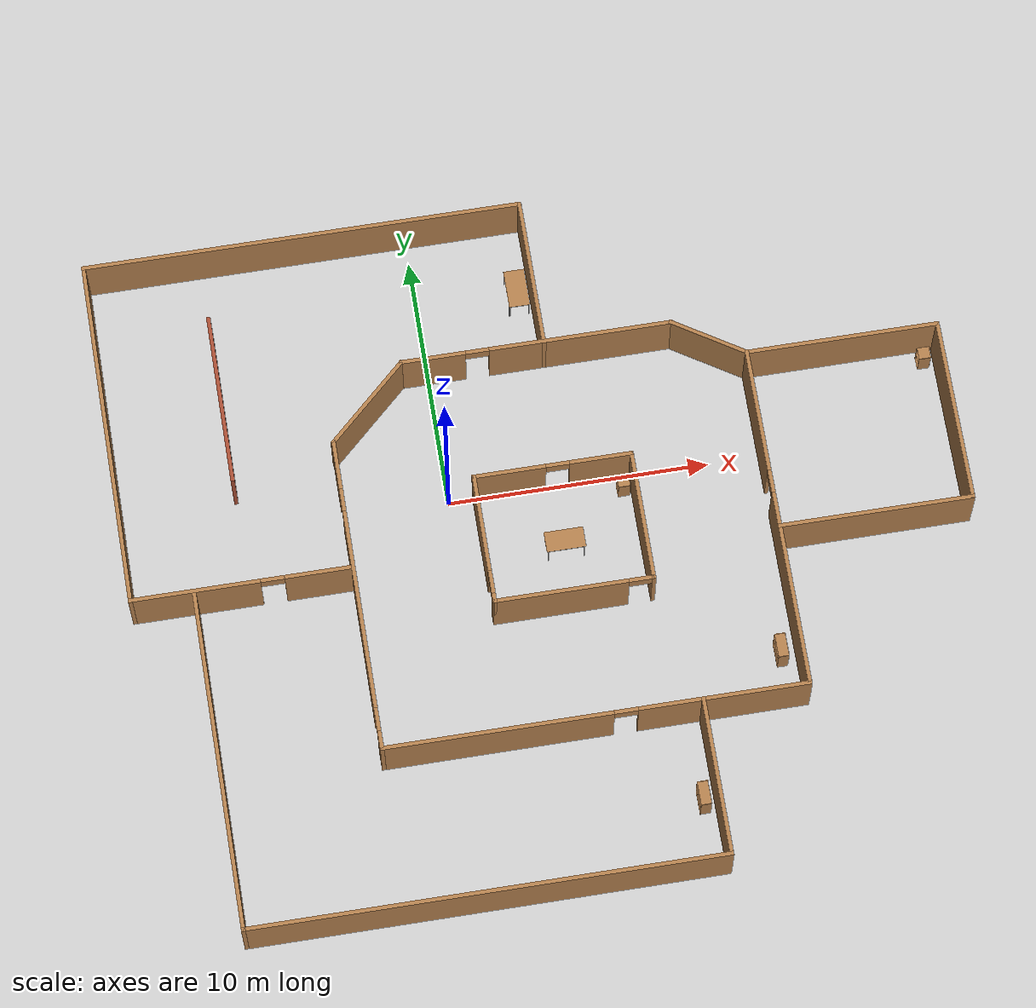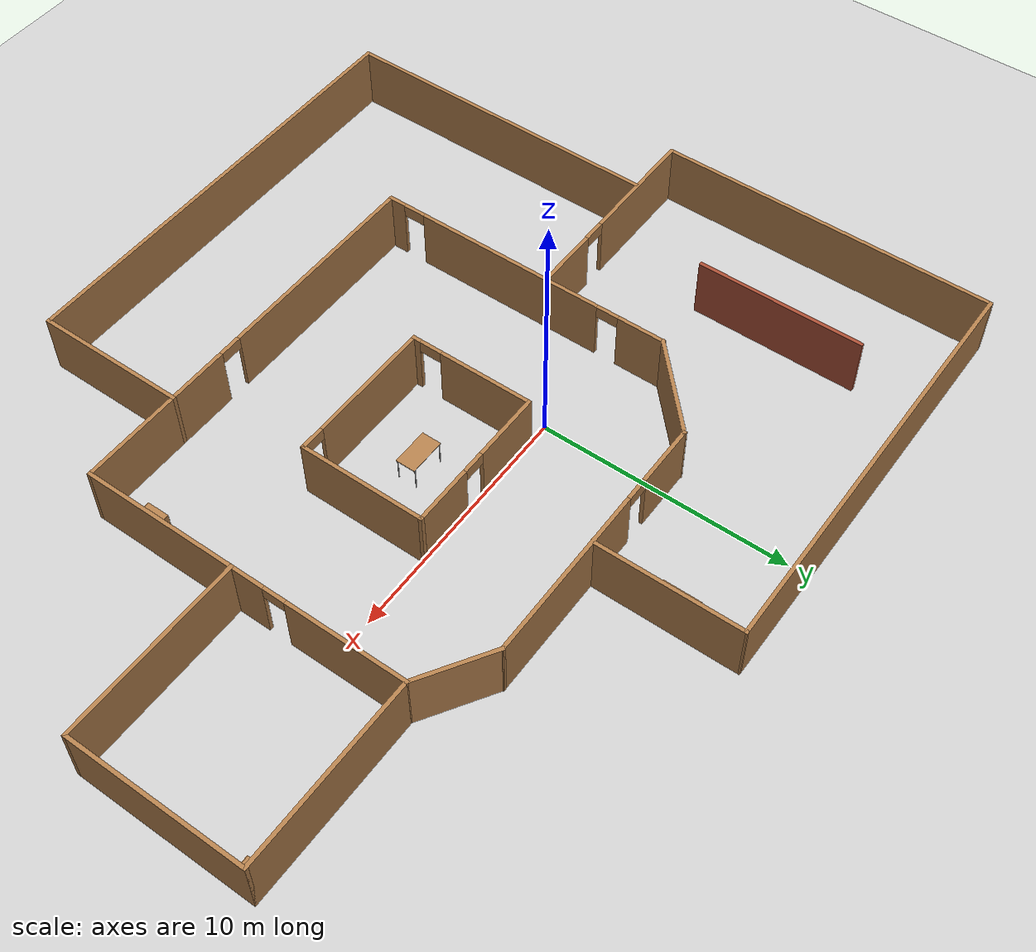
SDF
<sdf version="1.7">
 <world name="default">
  <model name="ground_plane">
   <static>1</static>
   <link name="link">
    <collision name="collision">
     <geometry><plane><normal>0 0 1</normal><size>100 100</size></plane></geometry>
     <surface>
      <contact><collide_bitmask>65535</collide_bitmask></contact>
      <friction><ode><mu>100</mu><mu2>50</mu2></ode></friction>
     </surface>
    </collision>
    <visual name="visual">
     <cast_shadows>0</cast_shadows>
     <geometry><plane><normal>0 0 1</normal><size>100 100</size></plane></geometry>
     <material>
      <script><uri>file://media/materials/scripts/gazebo.material</uri><name>Gazebo/Grey</name></script>
     </material>
    </visual>
   </link>
  </model>
  <model name="rs1_floor_plan_2">
   <pose>3.48266 -2.61019 0 0 -0 0</pose>
   <link name="Wall_1">
    <pose>8.51734 -0.714811 0 0 -0 -1.5708</pose>
    <visual name="Wall_1_Visual_0">
     <pose>-4.28666 0 1.25 0 -0 0</pose>
     <geometry><box><size>4.92668 0.15 2.5</size></box></geometry>
     <material>
      <script><uri>file://media/materials/scripts/gazebo.material</uri><name>Gazebo/Wood</name></script>
      <ambient>1 1 1 1</ambient>
     </material>
     <meta><layer>0</layer></meta>
    </visual>
    <collision name="Wall_1_Collision_0">
     <geometry><box><size>4.92668 0.15 2.5</size></box></geometry>
     <pose>-4.28666 0 1.25 0 -0 0</pose>
    </collision>
    <visual name="Wall_1_Visual_1">
     <pose>2.91334 0 1.25 0 -0 0</pose>
     <geometry><box><size>7.67333 0.15 2.5</size></box></geometry>
     <material>
      <script><uri>file://media/materials/scripts/gazebo.material</uri><name>Gazebo/Wood</name></script>
      <ambient>1 1 1 1</ambient>
     </material>
     <meta><layer>0</layer></meta>
    </visual>
    <collision name="Wall_1_Collision_1">
     <geometry><box><size>7.67333 0.15 2.5</size></box></geometry>
     <pose>2.91334 0 1.25 0 -0 0</pose>
    </collision>
    <visual name="Wall_1_Visual_2">
     <pose>-1.37332 0 2.25 0 -0 0</pose>
     <geometry><box><size>0.9 0.15 0.5</size></box></geometry>
     <material>
      <script><uri>file://media/materials/scripts/gazebo.material</uri><name>Gazebo/Wood</name></script>
      <ambient>1 1 1 1</ambient>
     </material>
     <meta><layer>0</layer></meta>
    </visual>
    <collision name="Wall_1_Collision_2">
     <geometry><box><size>0.9 0.15 0.5</size></box></geometry>
     <pose>-1.37332 0 2.25 0 -0 0</pose>
    </collision>
   </link>
   <link name="Wall_11">
    <pose>-11.6939 -0.210359 0 0 -0 3.14159</pose>
    <visual name="Wall_11_Visual_0">
     <pose>-2.93535 0 1.25 0 -0 0</pose>
     <geometry><box><size>2.6293 0.15 2.5</size></box></geometry>
     <material>
      <script><uri>file://media/materials/scripts/gazebo.material</uri><name>Gazebo/Wood</name></script>
      <ambient>1 1 1 1</ambient>
     </material>
     <meta><layer>0</layer></meta>
    </visual>
    <collision name="Wall_11_Collision_0">
     <geometry><box><size>2.6293 0.15 2.5</size></box></geometry>
     <pose>-2.93535 0 1.25 0 -0 0</pose>
    </collision>
    <visual name="Wall_11_Visual_1">
     <pose>1.76465 0 1.25 0 -0 0</pose>
     <geometry><box><size>4.9707 0.15 2.5</size></box></geometry>
     <material>
      <script><uri>file://media/materials/scripts/gazebo.material</uri><name>Gazebo/Wood</name></script>
      <ambient>1 1 1 1</ambient>
     </material>
     <meta><layer>0</layer></meta>
    </visual>
    <collision name="Wall_11_Collision_1">
     <geometry><box><size>4.9707 0.15 2.5</size></box></geometry>
     <pose>1.76465 0 1.25 0 -0 0</pose>
    </collision>
    <visual name="Wall_11_Visual_2">
     <pose>-1.1707 0 2.25 0 -0 0</pose>
     <geometry><box><size>0.9 0.15 0.5</size></box></geometry>
     <material>
      <script><uri>file://media/materials/scripts/gazebo.material</uri><name>Gazebo/Wood</name></script>
      <ambient>1 1 1 1</ambient>
     </material>
     <meta><layer>0</layer></meta>
    </visual>
    <collision name="Wall_11_Collision_2">
     <geometry><box><size>0.9 0.15 0.5</size></box></geometry>
     <pose>-1.1707 0 2.25 0 -0 0</pose>
    </collision>
   </link>
   <link name="Wall_12">
    <collision name="Wall_12_Collision">
     <geometry><box><size>13.75 0.15 2.5</size></box></geometry>
     <pose>0 0 1.25 0 -0 0</pose>
    </collision>
    <visual name="Wall_12_Visual">
     <pose>0 0 1.25 0 -0 0</pose>
     <geometry><box><size>13.75 0.15 2.5</size></box></geometry>
     <material>
      <script><uri>file://media/materials/scripts/gazebo.material</uri><name>Gazebo/Wood</name></script>
      <ambient>1 1 1 1</ambient>
     </material>
     <meta><layer>0</layer></meta>
    </visual>
    <pose>-15.8689 6.58964 0 0 -0 1.5708</pose>
   </link>
   <link name="Wall_13">
    <collision name="Wall_13_Collision">
     <geometry><box><size>17 0.15 2.5</size></box></geometry>
     <pose>0 0 1.25 0 -0 0</pose>
    </collision>
    <visual name="Wall_13_Visual">
     <pose>0 0 1.25 0 -0 0</pose>
     <geometry><box><size>17 0.15 2.5</size></box></geometry>
     <material>
      <script><uri>file://media/materials/scripts/gazebo.material</uri><name>Gazebo/Wood</name></script>
      <ambient>1 1 1 1</ambient>
     </material>
     <meta><layer>0</layer></meta>
    </visual>
    <pose>-7.44387 13.3896 0 0 -0 0</pose>
   </link>
   <link name="Wall_14">
    <collision name="Wall_14_Collision">
     <geometry><box><size>5.91225 0.15 2.5</size></box></geometry>
     <pose>0 0 1.25 0 -0 0</pose>
    </collision>
    <visual name="Wall_14_Visual">
     <pose>0 0 1.25 0 -0 0</pose>
     <geometry><box><size>5.91225 0.15 2.5</size></box></geometry>
     <material>
      <script><uri>file://media/materials/scripts/gazebo.material</uri><name>Gazebo/Wood</name></script>
      <ambient>1 1 1 1</ambient>
     </material>
     <meta><layer>0</layer></meta>
    </visual>
    <pose>0.987578 10.5085 0 0 -0 -1.56856</pose>
   </link>
   <link name="Wall_16">
    <collision name="Wall_16_Collision">
     <geometry><box><size>7.5 0.15 2.5</size></box></geometry>
     <pose>0 0 1.25 0 -0 0</pose>
    </collision>
    <visual name="Wall_16_Visual">
     <pose>0 0 1.25 0 -0 0</pose>
     <geometry><box><size>7.5 0.15 2.5</size></box></geometry>
     <material>
      <script><uri>file://media/materials/scripts/gazebo.material</uri><name>Gazebo/Wood</name></script>
      <ambient>1 1 1 1</ambient>
     </material>
     <meta><layer>0</layer></meta>
    </visual>
    <pose>12.1939 5.958 0 0 -0 0</pose>
   </link>
   <link name="Wall_17">
    <collision name="Wall_17_Collision">
     <geometry><box><size>7.25 0.15 2.5</size></box></geometry>
     <pose>0 0 1.25 0 -0 0</pose>
    </collision>
    <visual name="Wall_17_Visual">
     <pose>0 0 1.25 0 -0 0</pose>
     <geometry><box><size>7.25 0.15 2.5</size></box></geometry>
     <material>
      <script><uri>file://media/materials/scripts/gazebo.material</uri><name>Gazebo/Wood</name></script>
      <ambient>1 1 1 1</ambient>
     </material>
     <meta><layer>0</layer></meta>
    </visual>
    <pose>15.8689 2.408 0 0 -0 -1.5708</pose>
   </link>
   <link name="Wall_18">
    <collision name="Wall_18_Collision">
     <geometry><box><size>7.5 0.15 2.5</size></box></geometry>
     <pose>0 0 1.25 0 -0 0</pose>
    </collision>
    <visual name="Wall_18_Visual">
     <pose>0 0 1.25 0 -0 0</pose>
     <geometry><box><size>7.5 0.15 2.5</size></box></geometry>
     <material>
      <script><uri>file://media/materials/scripts/gazebo.material</uri><name>Gazebo/Wood</name></script>
      <ambient>1 1 1 1</ambient>
     </material>
     <meta><layer>0</layer></meta>
    </visual>
    <pose>12.1939 -1.142 0 0 -0 3.14159</pose>
   </link>
   <link name="Wall_2">
    <pose>0.517338 -7.38981 0 0 -0 3.14159</pose>
    <visual name="Wall_2_Visual_0">
     <pose>-4.8168 0 1.25 0 -0 0</pose>
     <geometry><box><size>6.5164 0.15 2.5</size></box></geometry>
     <material>
      <script><uri>file://media/materials/scripts/gazebo.material</uri><name>Gazebo/Wood</name></script>
      <ambient>1 1 1 1</ambient>
     </material>
     <meta><layer>0</layer></meta>
    </visual>
    <collision name="Wall_2_Collision_0">
     <geometry><box><size>6.5164 0.15 2.5</size></box></geometry>
     <pose>-4.8168 0 1.25 0 -0 0</pose>
    </collision>
    <visual name="Wall_2_Visual_1">
     <pose>3.7082 0 1.25 0 -0 0</pose>
     <geometry><box><size>8.7336 0.15 2.5</size></box></geometry>
     <material>
      <script><uri>file://media/materials/scripts/gazebo.material</uri><name>Gazebo/Wood</name></script>
      <ambient>1 1 1 1</ambient>
     </material>
     <meta><layer>0</layer></meta>
    </visual>
    <collision name="Wall_2_Collision_1">
     <geometry><box><size>8.7336 0.15 2.5</size></box></geometry>
     <pose>3.7082 0 1.25 0 -0 0</pose>
    </collision>
    <visual name="Wall_2_Visual_2">
     <pose>-1.1086 0 2.25 0 -0 0</pose>
     <geometry><box><size>0.9 0.15 0.5</size></box></geometry>
     <material>
      <script><uri>file://media/materials/scripts/gazebo.material</uri><name>Gazebo/Wood</name></script>
      <ambient>1 1 1 1</ambient>
     </material>
     <meta><layer>0</layer></meta>
    </visual>
    <collision name="Wall_2_Collision_2">
     <geometry><box><size>0.9 0.15 0.5</size></box></geometry>
     <pose>-1.1086 0 2.25 0 -0 0</pose>
    </collision>
   </link>
   <link name="Wall_20">
    <collision name="Wall_20_Collision">
     <geometry><box><size>4.25366 0.15 2.5</size></box></geometry>
     <pose>0 0 1.25 0 -0 0</pose>
    </collision>
    <visual name="Wall_20_Visual">
     <pose>0 0 1.25 0 -0 0</pose>
     <geometry><box><size>4.25366 0.15 2.5</size></box></geometry>
     <material>
      <script><uri>file://media/materials/scripts/gazebo.material</uri><name>Gazebo/Wood</name></script>
      <ambient>1 1 1 1</ambient>
     </material>
     <meta><layer>0</layer></meta>
    </visual>
    <pose>-5.98266 6.23019 0 0 -0 0.750929</pose>
   </link>
   <link name="Wall_21">
    <pose>0.702338 7.63019 0 0 -0 0</pose>
    <visual name="Wall_21_Visual_0">
     <pose>-3.9907 0 1.25 0 -0 0</pose>
     <geometry><box><size>2.5386 0.15 2.5</size></box></geometry>
     <material>
      <script><uri>file://media/materials/scripts/gazebo.material</uri><name>Gazebo/Wood</name></script>
      <ambient>1 1 1 1</ambient>
     </material>
     <meta><layer>0</layer></meta>
    </visual>
    <collision name="Wall_21_Collision_0">
     <geometry><box><size>2.5386 0.15 2.5</size></box></geometry>
     <pose>-3.9907 0 1.25 0 -0 0</pose>
    </collision>
    <visual name="Wall_21_Visual_1">
     <pose>1.7193 0 1.25 0 -0 0</pose>
     <geometry><box><size>7.0814 0.15 2.5</size></box></geometry>
     <material>
      <script><uri>file://media/materials/scripts/gazebo.material</uri><name>Gazebo/Wood</name></script>
      <ambient>1 1 1 1</ambient>
     </material>
     <meta><layer>0</layer></meta>
    </visual>
    <collision name="Wall_21_Collision_1">
     <geometry><box><size>7.0814 0.15 2.5</size></box></geometry>
     <pose>1.7193 0 1.25 0 -0 0</pose>
    </collision>
    <visual name="Wall_21_Visual_2">
     <pose>-2.2714 0 2.25 0 -0 0</pose>
     <geometry><box><size>0.9 0.15 0.5</size></box></geometry>
     <material>
      <script><uri>file://media/materials/scripts/gazebo.material</uri><name>Gazebo/Wood</name></script>
      <ambient>1 1 1 1</ambient>
     </material>
     <meta><layer>0</layer></meta>
    </visual>
    <collision name="Wall_21_Collision_2">
     <geometry><box><size>0.9 0.15 0.5</size></box></geometry>
     <pose>-2.2714 0 2.25 0 -0 0</pose>
    </collision>
   </link>
   <link name="Wall_22">
    <collision name="Wall_22_Collision">
     <geometry><box><size>3.26774 0.15 2.5</size></box></geometry>
     <pose>0 0 1.25 0 -0 0</pose>
    </collision>
    <visual name="Wall_22_Visual">
     <pose>0 0 1.25 0 -0 0</pose>
     <geometry><box><size>3.26774 0.15 2.5</size></box></geometry>
     <material>
      <script><uri>file://media/materials/scripts/gazebo.material</uri><name>Gazebo/Wood</name></script>
      <ambient>1 1 1 1</ambient>
     </material>
     <meta><layer>0</layer></meta>
    </visual>
    <pose>7.2031 6.79409 0 0 -0 -0.566075</pose>
   </link>
   <link name="Wall_24">
    <collision name="Wall_24_Collision">
     <geometry><box><size>6.75 0.15 2.5</size></box></geometry>
     <pose>0 0 1.25 0 -0 0</pose>
    </collision>
    <visual name="Wall_24_Visual">
     <pose>0 0 1.25 0 -0 0</pose>
     <geometry><box><size>6.75 0.15 2.5</size></box></geometry>
     <material>
      <script><uri>file://media/materials/scripts/gazebo.material</uri><name>Gazebo/Bricks</name></script>
      <ambient>1 1 1 1</ambient>
     </material>
     <meta><layer>0</layer></meta>
    </visual>
    <pose>-11.443 7.26025 0 0 -0 -1.5708</pose>
   </link>
   <link name="Wall_26">
    <collision name="Wall_26_Collision">
     <geometry><box><size>13.25 0.15 2.5</size></box></geometry>
     <pose>0 0 1.25 0 -0 0</pose>
    </collision>
    <visual name="Wall_26_Visual">
     <pose>0 0 1.25 0 -0 0</pose>
     <geometry><box><size>13.25 0.15 2.5</size></box></geometry>
     <material>
      <script><uri>file://media/materials/scripts/gazebo.material</uri><name>Gazebo/Wood</name></script>
      <ambient>1 1 1 1</ambient>
     </material>
     <meta><layer>0</layer></meta>
    </visual>
    <pose>-13.4827 -6.83981 0 0 -0 -1.5708</pose>
   </link>
   <link name="Wall_27">
    <collision name="Wall_27_Collision">
     <geometry><box><size>18.15 0.15 2.5</size></box></geometry>
     <pose>0 0 1.25 0 -0 0</pose>
    </collision>
    <visual name="Wall_27_Visual">
     <pose>0 0 1.25 0 -0 0</pose>
     <geometry><box><size>18.15 0.15 2.5</size></box></geometry>
     <material>
      <script><uri>file://media/materials/scripts/gazebo.material</uri><name>Gazebo/Wood</name></script>
      <ambient>1 1 1 1</ambient>
     </material>
     <meta><layer>0</layer></meta>
    </visual>
    <pose>-4.48266 -13.3898 0 0 -0 0</pose>
   </link>
   <link name="Wall_28">
    <collision name="Wall_28_Collision">
     <geometry><box><size>6.15 0.15 2.5</size></box></geometry>
     <pose>0 0 1.25 0 -0 0</pose>
    </collision>
    <visual name="Wall_28_Visual">
     <pose>0 0 1.25 0 -0 0</pose>
     <geometry><box><size>6.15 0.15 2.5</size></box></geometry>
     <material>
      <script><uri>file://media/materials/scripts/gazebo.material</uri><name>Gazebo/Wood</name></script>
      <ambient>1 1 1 1</ambient>
     </material>
     <meta><layer>0</layer></meta>
    </visual>
    <pose>4.51734 -10.3898 0 0 -0 1.5708</pose>
   </link>
   <link name="Wall_3">
    <pose>-7.48266 -1.27981 0 0 -0 1.5708</pose>
    <visual name="Wall_3_Visual_0">
     <pose>-5.80672 0 1.25 0 -0 0</pose>
     <geometry><box><size>0.756566 0.15 2.5</size></box></geometry>
     <material>
      <script><uri>file://media/materials/scripts/gazebo.material</uri><name>Gazebo/Wood</name></script>
      <ambient>1 1 1 1</ambient>
     </material>
     <meta><layer>0</layer></meta>
    </visual>
    <collision name="Wall_3_Collision_0">
     <geometry><box><size>0.756566 0.15 2.5</size></box></geometry>
     <pose>-5.80672 0 1.25 0 -0 0</pose>
    </collision>
    <visual name="Wall_3_Visual_1">
     <pose>-0.606396 0 1.25 0 -0 0</pose>
     <geometry><box><size>7.84408 0.15 2.5</size></box></geometry>
     <material>
      <script><uri>file://media/materials/scripts/gazebo.material</uri><name>Gazebo/Wood</name></script>
      <ambient>1 1 1 1</ambient>
     </material>
     <meta><layer>0</layer></meta>
    </visual>
    <collision name="Wall_3_Collision_1">
     <geometry><box><size>7.84408 0.15 2.5</size></box></geometry>
     <pose>-0.606396 0 1.25 0 -0 0</pose>
    </collision>
    <visual name="Wall_3_Visual_2">
     <pose>5.20032 0 1.25 0 -0 0</pose>
     <geometry><box><size>1.96936 0.15 2.5</size></box></geometry>
     <material>
      <script><uri>file://media/materials/scripts/gazebo.material</uri><name>Gazebo/Wood</name></script>
      <ambient>1 1 1 1</ambient>
     </material>
     <meta><layer>0</layer></meta>
    </visual>
    <collision name="Wall_3_Collision_2">
     <geometry><box><size>1.96936 0.15 2.5</size></box></geometry>
     <pose>5.20032 0 1.25 0 -0 0</pose>
    </collision>
    <visual name="Wall_3_Visual_3">
     <pose>-4.97843 0 2.25 0 -0 0</pose>
     <geometry><box><size>0.9 0.15 0.5</size></box></geometry>
     <material>
      <script><uri>file://media/materials/scripts/gazebo.material</uri><name>Gazebo/Wood</name></script>
      <ambient>1 1 1 1</ambient>
     </material>
     <meta><layer>0</layer></meta>
    </visual>
    <collision name="Wall_3_Collision_3">
     <geometry><box><size>0.9 0.15 0.5</size></box></geometry>
     <pose>-4.97843 0 2.25 0 -0 0</pose>
    </collision>
    <visual name="Wall_3_Visual_4">
     <pose>3.76564 0 2.25 0 -0 0</pose>
     <geometry><box><size>0.9 0.15 0.5</size></box></geometry>
     <material>
      <script><uri>file://media/materials/scripts/gazebo.material</uri><name>Gazebo/Wood</name></script>
      <ambient>1 1 1 1</ambient>
     </material>
     <meta><layer>0</layer></meta>
    </visual>
    <collision name="Wall_3_Collision_4">
     <geometry><box><size>0.9 0.15 0.5</size></box></geometry>
     <pose>3.76564 0 2.25 0 -0 0</pose>
    </collision>
   </link>
   <link name="Wall_5">
    <pose>-2.48266 0.110189 0 0 -0 -1.5708</pose>
    <visual name="Wall_5_Visual_0">
     <pose>-0.647016 0 1.25 0 -0 0</pose>
     <geometry><box><size>3.85597 0.15 2.5</size></box></geometry>
     <material>
      <script><uri>file://media/materials/scripts/gazebo.material</uri><name>Gazebo/Wood</name></script>
      <ambient>1 1 1 1</ambient>
     </material>
     <meta><layer>0</layer></meta>
    </visual>
    <collision name="Wall_5_Collision_0">
     <geometry><box><size>3.85597 0.15 2.5</size></box></geometry>
     <pose>-0.647016 0 1.25 0 -0 0</pose>
    </collision>
    <visual name="Wall_5_Visual_1">
     <pose>2.37798 0 1.25 0 -0 0</pose>
     <geometry><box><size>0.394033 0.15 2.5</size></box></geometry>
     <material>
      <script><uri>file://media/materials/scripts/gazebo.material</uri><name>Gazebo/Wood</name></script>
      <ambient>1 1 1 1</ambient>
     </material>
     <meta><layer>0</layer></meta>
    </visual>
    <collision name="Wall_5_Collision_1">
     <geometry><box><size>0.394033 0.15 2.5</size></box></geometry>
     <pose>2.37798 0 1.25 0 -0 0</pose>
    </collision>
    <visual name="Wall_5_Visual_2">
     <pose>1.73097 0 2.25 0 -0 0</pose>
     <geometry><box><size>0.9 0.15 0.5</size></box></geometry>
     <material>
      <script><uri>file://media/materials/scripts/gazebo.material</uri><name>Gazebo/Wood</name></script>
      <ambient>1 1 1 1</ambient>
     </material>
     <meta><layer>0</layer></meta>
    </visual>
    <collision name="Wall_5_Collision_2">
     <geometry><box><size>0.9 0.15 0.5</size></box></geometry>
     <pose>1.73097 0 2.25 0 -0 0</pose>
    </collision>
   </link>
   <link name="Wall_6">
    <pose>0.517338 -2.38981 0 0 -0 0</pose>
    <visual name="Wall_6_Visual_0">
     <pose>-0.506158 0 1.25 0 -0 0</pose>
     <geometry><box><size>5.13769 0.15 2.5</size></box></geometry>
     <material>
      <script><uri>file://media/materials/scripts/gazebo.material</uri><name>Gazebo/Wood</name></script>
      <ambient>1 1 1 1</ambient>
     </material>
     <meta><layer>0</layer></meta>
    </visual>
    <collision name="Wall_6_Collision_0">
     <geometry><box><size>5.13769 0.15 2.5</size></box></geometry>
     <pose>-0.506158 0 1.25 0 -0 0</pose>
    </collision>
    <visual name="Wall_6_Visual_1">
     <pose>3.01884 0 1.25 0 -0 0</pose>
     <geometry><box><size>0.112315 0.15 2.5</size></box></geometry>
     <material>
      <script><uri>file://media/materials/scripts/gazebo.material</uri><name>Gazebo/Wood</name></script>
      <ambient>1 1 1 1</ambient>
     </material>
     <meta><layer>0</layer></meta>
    </visual>
    <collision name="Wall_6_Collision_1">
     <geometry><box><size>0.112315 0.15 2.5</size></box></geometry>
     <pose>3.01884 0 1.25 0 -0 0</pose>
    </collision>
    <visual name="Wall_6_Visual_2">
     <pose>2.51268 0 2.25 0 -0 0</pose>
     <geometry><box><size>0.9 0.15 0.5</size></box></geometry>
     <material>
      <script><uri>file://media/materials/scripts/gazebo.material</uri><name>Gazebo/Wood</name></script>
      <ambient>1 1 1 1</ambient>
     </material>
     <meta><layer>0</layer></meta>
    </visual>
    <collision name="Wall_6_Collision_2">
     <geometry><box><size>0.9 0.15 0.5</size></box></geometry>
     <pose>2.51268 0 2.25 0 -0 0</pose>
    </collision>
   </link>
   <link name="Wall_7">
    <collision name="Wall_7_Collision">
     <geometry><box><size>5.15 0.15 2.5</size></box></geometry>
     <pose>0 0 1.25 0 -0 0</pose>
    </collision>
    <visual name="Wall_7_Visual">
     <pose>0 0 1.25 0 -0 0</pose>
     <geometry><box><size>5.15 0.15 2.5</size></box></geometry>
     <material>
      <script><uri>file://media/materials/scripts/gazebo.material</uri><name>Gazebo/Wood</name></script>
      <ambient>1 1 1 1</ambient>
     </material>
     <meta><layer>0</layer></meta>
    </visual>
    <pose>3.51734 0.110189 0 0 -0 1.5708</pose>
   </link>
   <link name="Wall_8">
    <pose>0.517338 2.61019 0 0 -0 3.14159</pose>
    <visual name="Wall_8_Visual_0">
     <pose>-1.85331 0 1.25 0 -0 0</pose>
     <geometry><box><size>2.44338 0.15 2.5</size></box></geometry>
     <material>
      <script><uri>file://media/materials/scripts/gazebo.material</uri><name>Gazebo/Wood</name></script>
      <ambient>1 1 1 1</ambient>
     </material>
     <meta><layer>0</layer></meta>
    </visual>
    <collision name="Wall_8_Collision_0">
     <geometry><box><size>2.44338 0.15 2.5</size></box></geometry>
     <pose>-1.85331 0 1.25 0 -0 0</pose>
    </collision>
    <visual name="Wall_8_Visual_1">
     <pose>1.67169 0 1.25 0 -0 0</pose>
     <geometry><box><size>2.80662 0.15 2.5</size></box></geometry>
     <material>
      <script><uri>file://media/materials/scripts/gazebo.material</uri><name>Gazebo/Wood</name></script>
      <ambient>1 1 1 1</ambient>
     </material>
     <meta><layer>0</layer></meta>
    </visual>
    <collision name="Wall_8_Collision_1">
     <geometry><box><size>2.80662 0.15 2.5</size></box></geometry>
     <pose>1.67169 0 1.25 0 -0 0</pose>
    </collision>
    <visual name="Wall_8_Visual_2">
     <pose>-0.181616 0 2.25 0 -0 0</pose>
     <geometry><box><size>0.9 0.15 0.5</size></box></geometry>
     <material>
      <script><uri>file://media/materials/scripts/gazebo.material</uri><name>Gazebo/Wood</name></script>
      <ambient>1 1 1 1</ambient>
     </material>
     <meta><layer>0</layer></meta>
    </visual>
    <collision name="Wall_8_Collision_2">
     <geometry><box><size>0.9 0.15 0.5</size></box></geometry>
     <pose>-0.181616 0 2.25 0 -0 0</pose>
    </collision>
   </link>
   <static>1</static>
  </model>
  <model name="table">
   <static>1</static>
   <link name="link">
    <collision name="surface">
     <pose>0 0 1 0 -0 0</pose>
     <geometry><box><size>1.5 0.8 0.03</size></box></geometry>
     <surface><friction><ode><mu>0.6</mu><mu2>0.6</mu2></ode></friction></surface>
    </collision>
    <visual name="visual1">
     <pose>0 0 1 0 -0 0</pose>
     <geometry><box><size>1.5 0.8 0.03</size></box></geometry>
     <material>
      <script><uri>file://media/materials/scripts/gazebo.material</uri><name>Gazebo/Wood</name></script>
     </material>
    </visual>
    <collision name="front_left_leg">
     <pose>0.68 0.38 0.5 0 -0 0</pose>
     <geometry><cylinder><radius>0.02</radius><length>1</length></cylinder></geometry>
    </collision>
    <visual name="front_left_leg">
     <pose>0.68 0.38 0.5 0 -0 0</pose>
     <geometry><cylinder><radius>0.02</radius><length>1</length></cylinder></geometry>
     <material>
      <script><uri>file://media/materials/scripts/gazebo.material</uri><name>Gazebo/Grey</name></script>
     </material>
    </visual>
    <collision name="front_right_leg">
     <pose>0.68 -0.38 0.5 0 -0 0</pose>
     <geometry><cylinder><radius>0.02</radius><length>1</length></cylinder></geometry>
    </collision>
    <visual name="front_right_leg">
     <pose>0.68 -0.38 0.5 0 -0 0</pose>
     <geometry><cylinder><radius>0.02</radius><length>1</length></cylinder></geometry>
     <material>
      <script><uri>file://media/materials/scripts/gazebo.material</uri><name>Gazebo/Grey</name></script>
     </material>
    </visual>
    <collision name="back_right_leg">
     <pose>-0.68 -0.38 0.5 0 -0 0</pose>
     <geometry><cylinder><radius>0.02</radius><length>1</length></cylinder></geometry>
    </collision>
    <visual name="back_right_leg">
     <pose>-0.68 -0.38 0.5 0 -0 0</pose>
     <geometry><cylinder><radius>0.02</radius><length>1</length></cylinder></geometry>
     <material>
      <script><uri>file://media/materials/scripts/gazebo.material</uri><name>Gazebo/Grey</name></script>
     </material>
    </visual>
    <collision name="back_left_leg">
     <pose>-0.68 0.38 0.5 0 -0 0</pose>
     <geometry><cylinder><radius>0.02</radius><length>1</length></cylinder></geometry>
    </collision>
    <visual name="back_left_leg">
     <pose>-0.68 0.38 0.5 0 -0 0</pose>
     <geometry><cylinder><radius>0.02</radius><length>1</length></cylinder></geometry>
     <material>
      <script><uri>file://media/materials/scripts/gazebo.material</uri><name>Gazebo/Grey</name></script>
     </material>
    </visual>
   </link>
   <pose>4.06798 -2.48415 0 0 -0 0</pose>
  </model>
  <model name="table_1">
   <static>1</static>
   <link name="link">
    <collision name="surface">
     <pose>0 0 1 0 -0 0</pose>
     <geometry><box><size>1.5 0.8 0.03</size></box></geometry>
     <surface><friction><ode><mu>0.6</mu><mu2>0.6</mu2></ode></friction></surface>
    </collision>
    <visual name="visual1">
     <pose>0 0 1 0 -0 0</pose>
     <geometry><box><size>1.5 0.8 0.03</size></box></geometry>
     <material>
      <script><uri>file://media/materials/scripts/gazebo.material</uri><name>Gazebo/Wood</name></script>
     </material>
    </visual>
    <collision name="front_left_leg">
     <pose>0.68 0.38 0.5 0 -0 0</pose>
     <geometry><cylinder><radius>0.02</radius><length>1</length></cylinder></geometry>
    </collision>
    <visual name="front_left_leg">
     <pose>0.68 0.38 0.5 0 -0 0</pose>
     <geometry><cylinder><radius>0.02</radius><length>1</length></cylinder></geometry>
     <material>
      <script><uri>file://media/materials/scripts/gazebo.material</uri><name>Gazebo/Grey</name></script>
     </material>
    </visual>
    <collision name="front_right_leg">
     <pose>0.68 -0.38 0.5 0 -0 0</pose>
     <geometry><cylinder><radius>0.02</radius><length>1</length></cylinder></geometry>
    </collision>
    <visual name="front_right_leg">
     <pose>0.68 -0.38 0.5 0 -0 0</pose>
     <geometry><cylinder><radius>0.02</radius><length>1</length></cylinder></geometry>
     <material>
      <script><uri>file://media/materials/scripts/gazebo.material</uri><name>Gazebo/Grey</name></script>
     </material>
    </visual>
    <collision name="back_right_leg">
     <pose>-0.68 -0.38 0.5 0 -0 0</pose>
     <geometry><cylinder><radius>0.02</radius><length>1</length></cylinder></geometry>
    </collision>
    <visual name="back_right_leg">
     <pose>-0.68 -0.38 0.5 0 -0 0</pose>
     <geometry><cylinder><radius>0.02</radius><length>1</length></cylinder></geometry>
     <material>
      <script><uri>file://media/materials/scripts/gazebo.material</uri><name>Gazebo/Grey</name></script>
     </material>
    </visual>
    <collision name="back_left_leg">
     <pose>-0.68 0.38 0.5 0 -0 0</pose>
     <geometry><cylinder><radius>0.02</radius><length>1</length></cylinder></geometry>
    </collision>
    <visual name="back_left_leg">
     <pose>-0.68 0.38 0.5 0 -0 0</pose>
     <geometry><cylinder><radius>0.02</radius><length>1</length></cylinder></geometry>
     <material>
      <script><uri>file://media/materials/scripts/gazebo.material</uri><name>Gazebo/Grey</name></script>
     </material>
    </visual>
   </link>
   <pose>3.90488 7.95027 0 0 0 -1.5708</pose>
  </model>
  <model name="cabinet">
   <static>1</static>
   <link name="cabinet_bottom_plate">
    <inertial>
     <pose>0 0 -1 0 -0 0</pose>
     <inertia><ixx>2.05</ixx><ixy>0</ixy><ixz>0</ixz><iyy>2.05</iyy><iyz>0</iyz><izz>2.05</izz></inertia>
     <mass>25</mass>
    </inertial>
    <collision name="cabinet_bottom_plate_geom">
     <pose>0 0 0.01 0 -0 0</pose>
     <geometry><box><size>0.45 0.45 0.02</size></box></geometry>
    </collision>
    <visual name="cabinet_bottom_plate_geom_visual">
     <pose>0 0 0.01 0 -0 0</pose>
     <geometry><box><size>0.45 0.45 0.02</size></box></geometry>
     <material>
      <script><uri>file://media/materials/scripts/gazebo.material</uri><name>Gazebo/Wood</name></script>
     </material>
    </visual>
    <collision name="cabinet_bottom_plate_geom_cabinet_back_plate">
     <pose>0.235 0 0.51 0 -0 0</pose>
     <geometry><box><size>0.02 0.45 1.02</size></box></geometry>
    </collision>
    <visual name="cabinet_bottom_plate_geom_cabinet_back_plate_visual">
     <pose>0.235 0 0.51 0 -0 0</pose>
     <geometry><box><size>0.02 0.45 1.02</size></box></geometry>
     <material>
      <script><uri>file://media/materials/scripts/gazebo.material</uri><name>Gazebo/Wood</name></script>
     </material>
    </visual>
    <collision name="cabinet_bottom_plate_geom_cabinet_left_plate">
     <pose>0 0.235 0.51 0 -0 0</pose>
     <geometry><box><size>0.45 0.02 1.02</size></box></geometry>
    </collision>
    <visual name="cabinet_bottom_plate_geom_cabinet_left_plate_visual">
     <pose>0 0.235 0.51 0 -0 0</pose>
     <geometry><box><size>0.45 0.02 1.02</size></box></geometry>
     <material>
      <script><uri>file://media/materials/scripts/gazebo.material</uri><name>Gazebo/Wood</name></script>
     </material>
    </visual>
    <collision name="cabinet_bottom_plate_geom_cabinet_middle_plate">
     <pose>0 0 0.51 0 -0 0</pose>
     <geometry><box><size>0.45 0.45 0.02</size></box></geometry>
    </collision>
    <visual name="cabinet_bottom_plate_geom_cabinet_middle_plate_visual">
     <pose>0 0 0.51 0 -0 0</pose>
     <geometry><box><size>0.45 0.45 0.02</size></box></geometry>
     <material>
      <script><uri>file://media/materials/scripts/gazebo.material</uri><name>Gazebo/Wood</name></script>
     </material>
    </visual>
    <collision name="cabinet_bottom_plate_geom_cabinet_right_plate">
     <pose>0 -0.235 0.51 0 -0 0</pose>
     <geometry><box><size>0.45 0.02 1.02</size></box></geometry>
    </collision>
    <visual name="cabinet_bottom_plate_geom_cabinet_right_plate_visual">
     <pose>0 -0.235 0.51 0 -0 0</pose>
     <geometry><box><size>0.45 0.02 1.02</size></box></geometry>
     <material>
      <script><uri>file://media/materials/scripts/gazebo.material</uri><name>Gazebo/Wood</name></script>
     </material>
    </visual>
    <collision name="cabinet_bottom_plate_geom_cabinet_top_plate">
     <pose>0 0 1.01 0 -0 0</pose>
     <geometry><box><size>0.45 0.45 0.02</size></box></geometry>
    </collision>
    <visual name="cabinet_bottom_plate_geom_cabinet_top_plate_visual">
     <pose>0 0 1.01 0 -0 0</pose>
     <geometry><box><size>0.45 0.45 0.02</size></box></geometry>
     <material>
      <script><uri>file://media/materials/scripts/gazebo.material</uri><name>Gazebo/Wood</name></script>
     </material>
    </visual>
   </link>
   <pose>6.63594 -0.505404 0 0 -0 0</pose>
  </model>
  <model name="bookshelf_2">
   <static>1</static>
   <link name="link">
    <inertial><mass>1</mass></inertial>
    <collision name="back">
     <pose>0 0.005 0.6 0 -0 0</pose>
     <geometry><box><size>0.9 0.01 1.2</size></box></geometry>
    </collision>
    <visual name="visual1">
     <pose>0 0.005 0.6 0 -0 0</pose>
     <geometry><box><size>0.9 0.01 1.2</size></box></geometry>
     <material>
      <script><uri>file://media/materials/scripts/gazebo.material</uri><name>Gazebo/Wood</name></script>
     </material>
    </visual>
    <collision name="left_side">
     <pose>0.45 -0.195 0.6 0 -0 0</pose>
     <geometry><box><size>0.02 0.4 1.2</size></box></geometry>
    </collision>
    <visual name="visual2">
     <pose>0.45 -0.195 0.6 0 -0 0</pose>
     <geometry><box><size>0.02 0.4 1.2</size></box></geometry>
     <material>
      <script><uri>file://media/materials/scripts/gazebo.material</uri><name>Gazebo/Wood</name></script>
     </material>
    </visual>
    <collision name="right_side">
     <pose>-0.45 -0.195 0.6 0 -0 0</pose>
     <geometry><box><size>0.02 0.4 1.2</size></box></geometry>
    </collision>
    <visual name="visual3">
     <pose>-0.45 -0.195 0.6 0 -0 0</pose>
     <geometry><box><size>0.02 0.4 1.2</size></box></geometry>
     <material>
      <script><uri>file://media/materials/scripts/gazebo.material</uri><name>Gazebo/Wood</name></script>
     </material>
    </visual>
    <collision name="bottom">
     <pose>0 -0.195 0.03 0 -0 0</pose>
     <geometry><box><size>0.88 0.4 0.06</size></box></geometry>
    </collision>
    <visual name="visual4">
     <pose>0 -0.195 0.03 0 -0 0</pose>
     <geometry><box><size>0.88 0.4 0.06</size></box></geometry>
     <material>
      <script><uri>file://media/materials/scripts/gazebo.material</uri><name>Gazebo/Wood</name></script>
     </material>
    </visual>
    <collision name="top">
     <pose>0 -0.195 1.19 0 -0 0</pose>
     <geometry><box><size>0.88 0.4 0.02</size></box></geometry>
    </collision>
    <visual name="visual5">
     <pose>0 -0.195 1.19 0 -0 0</pose>
     <geometry><box><size>0.88 0.4 0.02</size></box></geometry>
     <material>
      <script><uri>file://media/materials/scripts/gazebo.material</uri><name>Gazebo/Wood</name></script>
     </material>
    </visual>
    <collision name="low_shelf">
     <pose>0 -0.195 0.43 0 -0 0</pose>
     <geometry><box><size>0.88 0.4 0.02</size></box></geometry>
    </collision>
    <visual name="visual6">
     <pose>0 -0.195 0.43 0 -0 0</pose>
     <geometry><box><size>0.88 0.4 0.02</size></box></geometry>
     <material>
      <script><uri>file://media/materials/scripts/gazebo.material</uri><name>Gazebo/Wood</name></script>
     </material>
    </visual>
    <collision name="high_shelf">
     <pose>0 -0.195 0.8 0 -0 0</pose>
     <geometry><box><size>0.88 0.4 0.02</size></box></geometry>
    </collision>
    <visual name="visual7">
     <pose>0 -0.195 0.8 0 -0 0</pose>
     <geometry><box><size>0.88 0.4 0.02</size></box></geometry>
     <material>
      <script><uri>file://media/materials/scripts/gazebo.material</uri><name>Gazebo/Wood</name></script>
     </material>
    </visual>
   </link>
   <pose>7.71893 -13.1932 0 0 0 -1.5708</pose>
  </model>
  <model name="bookshelf_3">
   <static>1</static>
   <link name="link">
    <inertial><mass>1</mass></inertial>
    <collision name="back">
     <pose>0 0.005 0.6 0 -0 0</pose>
     <geometry><box><size>0.9 0.01 1.2</size></box></geometry>
    </collision>
    <visual name="visual1">
     <pose>0 0.005 0.6 0 -0 0</pose>
     <geometry><box><size>0.9 0.01 1.2</size></box></geometry>
     <material>
      <script><uri>file://media/materials/scripts/gazebo.material</uri><name>Gazebo/Wood</name></script>
     </material>
    </visual>
    <collision name="left_side">
     <pose>0.45 -0.195 0.6 0 -0 0</pose>
     <geometry><box><size>0.02 0.4 1.2</size></box></geometry>
    </collision>
    <visual name="visual2">
     <pose>0.45 -0.195 0.6 0 -0 0</pose>
     <geometry><box><size>0.02 0.4 1.2</size></box></geometry>
     <material>
      <script><uri>file://media/materials/scripts/gazebo.material</uri><name>Gazebo/Wood</name></script>
     </material>
    </visual>
    <collision name="right_side">
     <pose>-0.45 -0.195 0.6 0 -0 0</pose>
     <geometry><box><size>0.02 0.4 1.2</size></box></geometry>
    </collision>
    <visual name="visual3">
     <pose>-0.45 -0.195 0.6 0 -0 0</pose>
     <geometry><box><size>0.02 0.4 1.2</size></box></geometry>
     <material>
      <script><uri>file://media/materials/scripts/gazebo.material</uri><name>Gazebo/Wood</name></script>
     </material>
    </visual>
    <collision name="bottom">
     <pose>0 -0.195 0.03 0 -0 0</pose>
     <geometry><box><size>0.88 0.4 0.06</size></box></geometry>
    </collision>
    <visual name="visual4">
     <pose>0 -0.195 0.03 0 -0 0</pose>
     <geometry><box><size>0.88 0.4 0.06</size></box></geometry>
     <material>
      <script><uri>file://media/materials/scripts/gazebo.material</uri><name>Gazebo/Wood</name></script>
     </material>
    </visual>
    <collision name="top">
     <pose>0 -0.195 1.19 0 -0 0</pose>
     <geometry><box><size>0.88 0.4 0.02</size></box></geometry>
    </collision>
    <visual name="visual5">
     <pose>0 -0.195 1.19 0 -0 0</pose>
     <geometry><box><size>0.88 0.4 0.02</size></box></geometry>
     <material>
      <script><uri>file://media/materials/scripts/gazebo.material</uri><name>Gazebo/Wood</name></script>
     </material>
    </visual>
    <collision name="low_shelf">
     <pose>0 -0.195 0.43 0 -0 0</pose>
     <geometry><box><size>0.88 0.4 0.02</size></box></geometry>
    </collision>
    <visual name="visual6">
     <pose>0 -0.195 0.43 0 -0 0</pose>
     <geometry><box><size>0.88 0.4 0.02</size></box></geometry>
     <material>
      <script><uri>file://media/materials/scripts/gazebo.material</uri><name>Gazebo/Wood</name></script>
     </material>
    </visual>
    <collision name="high_shelf">
     <pose>0 -0.195 0.8 0 -0 0</pose>
     <geometry><box><size>0.88 0.4 0.02</size></box></geometry>
    </collision>
    <visual name="visual7">
     <pose>0 -0.195 0.8 0 -0 0</pose>
     <geometry><box><size>0.88 0.4 0.02</size></box></geometry>
     <material>
      <script><uri>file://media/materials/scripts/gazebo.material</uri><name>Gazebo/Wood</name></script>
     </material>
    </visual>
   </link>
   <pose>11.567 -7.97815 0 0 0 -1.5708</pose>
  </model>
  <model name="cabinet_0">
   <static>1</static>
   <link name="cabinet_bottom_plate">
    <inertial>
     <pose>0 0 -1 0 -0 0</pose>
     <inertia><ixx>2.05</ixx><ixy>0</ixy><ixz>0</ixz><iyy>2.05</iyy><iyz>0</iyz><izz>2.05</izz></inertia>
     <mass>25</mass>
    </inertial>
    <collision name="cabinet_bottom_plate_geom">
     <pose>0 0 0.01 0 -0 0</pose>
     <geometry><box><size>0.45 0.45 0.02</size></box></geometry>
    </collision>
    <visual name="cabinet_bottom_plate_geom_visual">
     <pose>0 0 0.01 0 -0 0</pose>
     <geometry><box><size>0.45 0.45 0.02</size></box></geometry>
     <material>
      <script><uri>file://media/materials/scripts/gazebo.material</uri><name>Gazebo/Wood</name></script>
     </material>
    </visual>
    <collision name="cabinet_bottom_plate_geom_cabinet_back_plate">
     <pose>0.235 0 0.51 0 -0 0</pose>
     <geometry><box><size>0.02 0.45 1.02</size></box></geometry>
    </collision>
    <visual name="cabinet_bottom_plate_geom_cabinet_back_plate_visual">
     <pose>0.235 0 0.51 0 -0 0</pose>
     <geometry><box><size>0.02 0.45 1.02</size></box></geometry>
     <material>
      <script><uri>file://media/materials/scripts/gazebo.material</uri><name>Gazebo/Wood</name></script>
     </material>
    </visual>
    <collision name="cabinet_bottom_plate_geom_cabinet_left_plate">
     <pose>0 0.235 0.51 0 -0 0</pose>
     <geometry><box><size>0.45 0.02 1.02</size></box></geometry>
    </collision>
    <visual name="cabinet_bottom_plate_geom_cabinet_left_plate_visual">
     <pose>0 0.235 0.51 0 -0 0</pose>
     <geometry><box><size>0.45 0.02 1.02</size></box></geometry>
     <material>
      <script><uri>file://media/materials/scripts/gazebo.material</uri><name>Gazebo/Wood</name></script>
     </material>
    </visual>
    <collision name="cabinet_bottom_plate_geom_cabinet_middle_plate">
     <pose>0 0 0.51 0 -0 0</pose>
     <geometry><box><size>0.45 0.45 0.02</size></box></geometry>
    </collision>
    <visual name="cabinet_bottom_plate_geom_cabinet_middle_plate_visual">
     <pose>0 0 0.51 0 -0 0</pose>
     <geometry><box><size>0.45 0.45 0.02</size></box></geometry>
     <material>
      <script><uri>file://media/materials/scripts/gazebo.material</uri><name>Gazebo/Wood</name></script>
     </material>
    </visual>
    <collision name="cabinet_bottom_plate_geom_cabinet_right_plate">
     <pose>0 -0.235 0.51 0 -0 0</pose>
     <geometry><box><size>0.45 0.02 1.02</size></box></geometry>
    </collision>
    <visual name="cabinet_bottom_plate_geom_cabinet_right_plate_visual">
     <pose>0 -0.235 0.51 0 -0 0</pose>
     <geometry><box><size>0.45 0.02 1.02</size></box></geometry>
     <material>
      <script><uri>file://media/materials/scripts/gazebo.material</uri><name>Gazebo/Wood</name></script>
     </material>
    </visual>
    <collision name="cabinet_bottom_plate_geom_cabinet_top_plate">
     <pose>0 0 1.01 0 -0 0</pose>
     <geometry><box><size>0.45 0.45 0.02</size></box></geometry>
    </collision>
    <visual name="cabinet_bottom_plate_geom_cabinet_top_plate_visual">
     <pose>0 0 1.01 0 -0 0</pose>
     <geometry><box><size>0.45 0.45 0.02</size></box></geometry>
     <material>
      <script><uri>file://media/materials/scripts/gazebo.material</uri><name>Gazebo/Wood</name></script>
     </material>
    </visual>
   </link>
   <pose>18.8524 2.81713 0 0 -0 0</pose>
  </model>
 </world>
</sdf>
